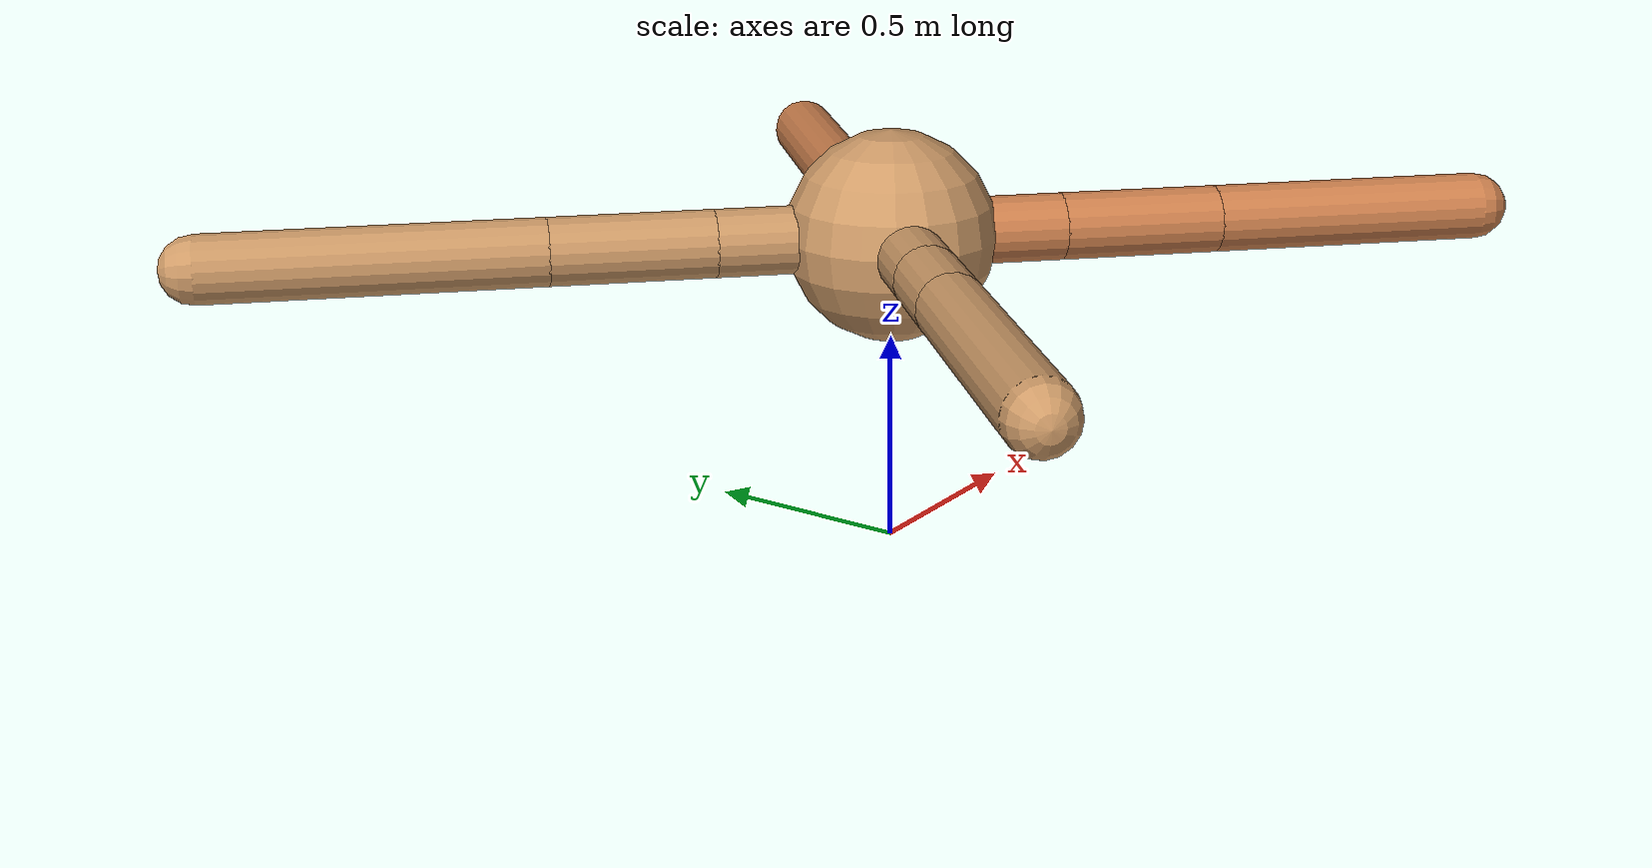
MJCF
<mujoco model="ant">
  <compiler angle="degree" coordinate="local" inertiafromgeom="true" />
  <option integrator="RK4" timestep="0.01" />
  <custom>
    <numeric data="0.0 0.0 0.55 1.0 0.0 0.0 0.0 0.0 1.0 0.0 -1.0 0.0 -1.0 0.0 1.0" name="init_qpos" />
  </custom>
  <default>
    <joint armature="1" damping="1" limited="true" />
    <geom conaffinity="0" condim="3" density="5.0" friction="1.5 0.1 0.1" margin="0.01" rgba="0.8 0.6 0.4 1" />
  </default>
  <worldbody>
    <body name="torso" pos="0 0 0.75">
      <geom name="torso_geom" pos="0 0 0" size="0.25" type="sphere" />

      <body name="front_left_leg" pos="0 0 0">
        <geom fromto="0.0 0.0 0.0 0.20641121283993097 0.20641121283993097 0.0" name="aux_1_geom" size="0.08" type="capsule" rgba=".8 .5 .3 1" />
        <body name="aux_1" pos="0.20641121283993097 0.20641121283993097 0.0">
          <joint axis="0 0 1" name="hip_1" pos="0.0 0.0 0.0" range="-40 40" type="hinge" />
          <geom fromto="0.0 0.0 0.0 0.17737708784733633 0.17737708784733633 0.0" name="left_leg_geom" size="0.08" type="capsule" rgba=".8 .5 .3 1" />
          <body pos="0.17737708784733633 0.17737708784733633 0.0" name="front_left_foot">
            <joint axis="-1 1 0" name="ankle_1" pos="0.0 0.0 0.0" range="30 100" type="hinge" />
            <geom fromto="0.0 0.0 0.0 0.46128265488630565 0.46128265488630565 0.0" name="left_ankle_geom" size="0.08" type="capsule" rgba=".8 .5 .3 1" />
          </body>
        </body>
      </body>
      <body name="front_right_leg" pos="0 0 0">
        <geom fromto="0.0 0.0 0.0 -0.29435203639095614 0.29435203639095614 0.0" name="aux_2_geom" size="0.08" type="capsule" />
        <body name="aux_2" pos="-0.29435203639095614 0.29435203639095614 0.0">
          <joint axis="0 0 1" name="hip_2" pos="0.0 0.0 0.0" range="-40 40" type="hinge" />
          <geom fromto="0.0 0.0 0.0 -0.2717317999528044 0.2717317999528044 0.0" name="right_leg_geom" size="0.08" type="capsule" />
          <body pos="-0.2717317999528044 0.2717317999528044 0.0" name="front_right_foot">
            <joint axis="1 1 0" name="ankle_2" pos="0.0 0.0 0.0" range="-100 -30" type="hinge" />
            <geom fromto="0.0 0.0 0.0 -0.5538751356460699 0.5538751356460699 0.0" name="right_ankle_geom" size="0.08" type="capsule" />
          </body>
        </body>
      </body>
      <body name="left_back_leg" pos="0 0 0">
        <geom fromto="0.0 0.0 0.0 -0.2837106052350741 -0.2837106052350741 0.0" name="aux_3_geom" size="0.08" type="capsule" />
        <body name="aux_3" pos="-0.2837106052350741 -0.2837106052350741 0.0">
          <joint axis="0 0 1" name="hip_3" pos="0.0 0.0 0.0" range="-40 40" type="hinge" />
          <geom fromto="0.0 0.0 0.0 -0.15869628638369387 -0.15869628638369387 0.0" name="back_leg_geom" size="0.08" type="capsule" />
          <body pos="-0.15869628638369387 -0.15869628638369387 0.0" name="left_back_foot">
            <joint axis="-1 1 0" name="ankle_3" pos="0.0 0.0 0.0" range="-100 -30" type="hinge" />
            <geom fromto="0.0 0.0 0.0 -0.502395774670055 -0.502395774670055 0.0" name="third_ankle_geom" size="0.08" type="capsule" />
          </body>
        </body>
      </body>
      <body name="right_back_leg" pos="0 0 0">
        <geom fromto="0.0 0.0 0.0 0.2912493838596985 -0.2912493838596985 0.0" name="aux_4_geom" size="0.08" type="capsule" rgba=".8 .5 .3 1" />
        <body name="aux_4" pos="0.2912493838596985 -0.2912493838596985 0.0">
          <joint axis="0 0 1" name="hip_4" pos="0.0 0.0 0.0" range="-40 40" type="hinge" />
          <geom fromto="0.0 0.0 0.0 0.2698447576123701 -0.2698447576123701 0.0" name="rightback_leg_geom" size="0.08" type="capsule" rgba=".8 .5 .3 1" />
          <body pos="0.2698447576123701 -0.2698447576123701 0.0" name="right_back_foot">
            <joint axis="1 1 0" name="ankle_4" pos="0.0 0.0 0.0" range="30 100" type="hinge" />
            <geom fromto="0.0 0.0 0.0 0.47230083196482103 -0.47230083196482103 0.0" name="fourth_ankle_geom" size="0.08" type="capsule" rgba=".8 .5 .3 1" />
          </body>
        </body>
      </body>
    </body>
  </worldbody>
  <actuator>
    <motor ctrllimited="true" ctrlrange="-1.0 1.0" joint="hip_4" gear="150" />
    <motor ctrllimited="true" ctrlrange="-1.0 1.0" joint="ankle_4" gear="150" />
    <motor ctrllimited="true" ctrlrange="-1.0 1.0" joint="hip_1" gear="150" />
    <motor ctrllimited="true" ctrlrange="-1.0 1.0" joint="ankle_1" gear="150" />
    <motor ctrllimited="true" ctrlrange="-1.0 1.0" joint="hip_2" gear="150" />
    <motor ctrllimited="true" ctrlrange="-1.0 1.0" joint="ankle_2" gear="150" />
    <motor ctrllimited="true" ctrlrange="-1.0 1.0" joint="hip_3" gear="150" />
    <motor ctrllimited="true" ctrlrange="-1.0 1.0" joint="ankle_3" gear="150" />
  </actuator>
</mujoco>
